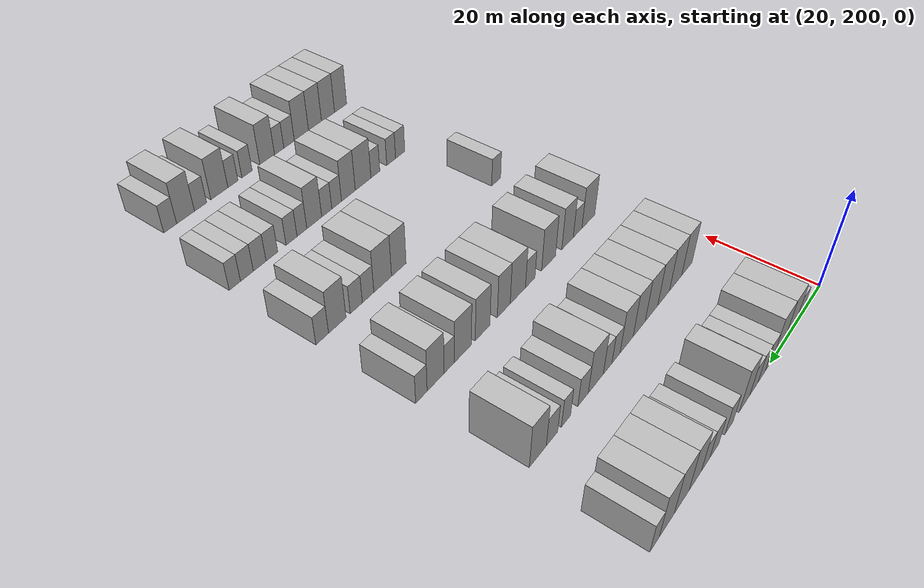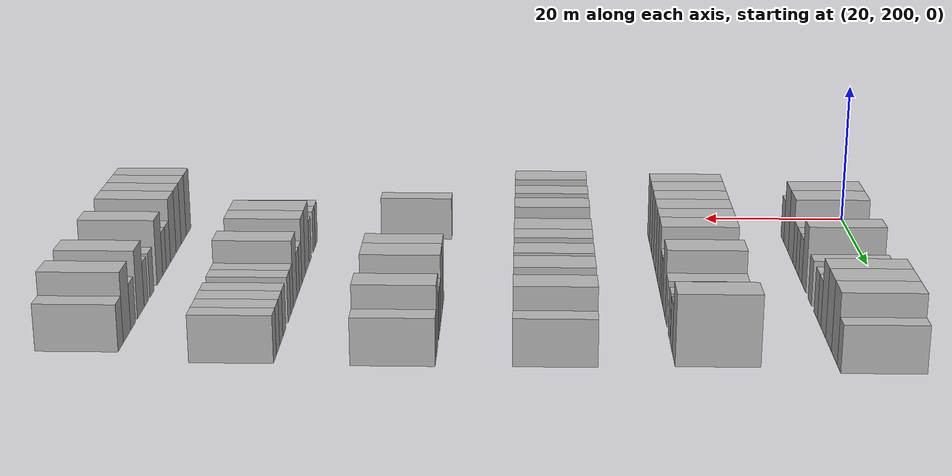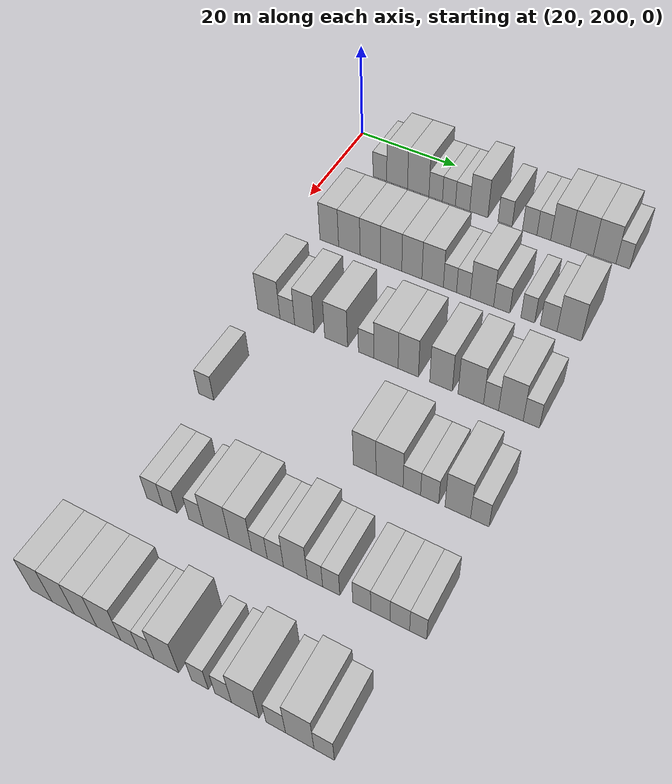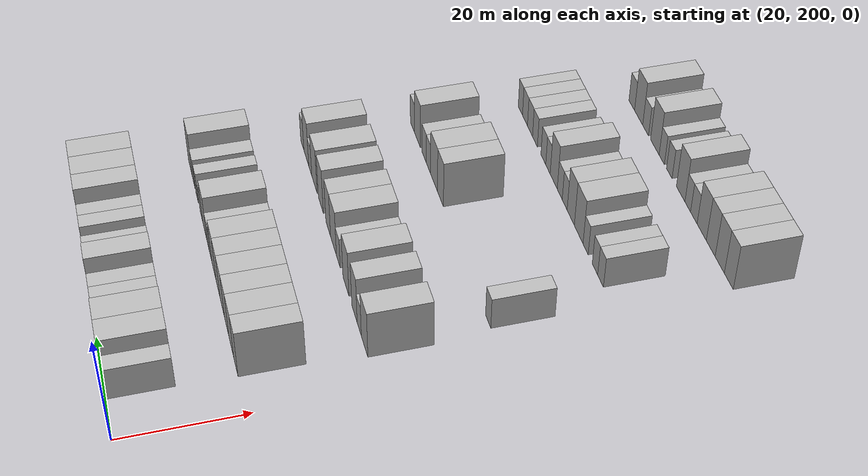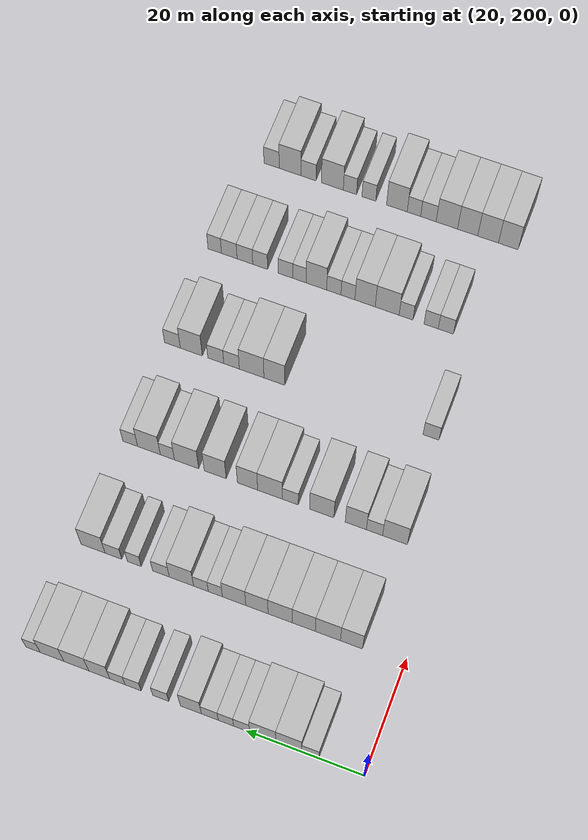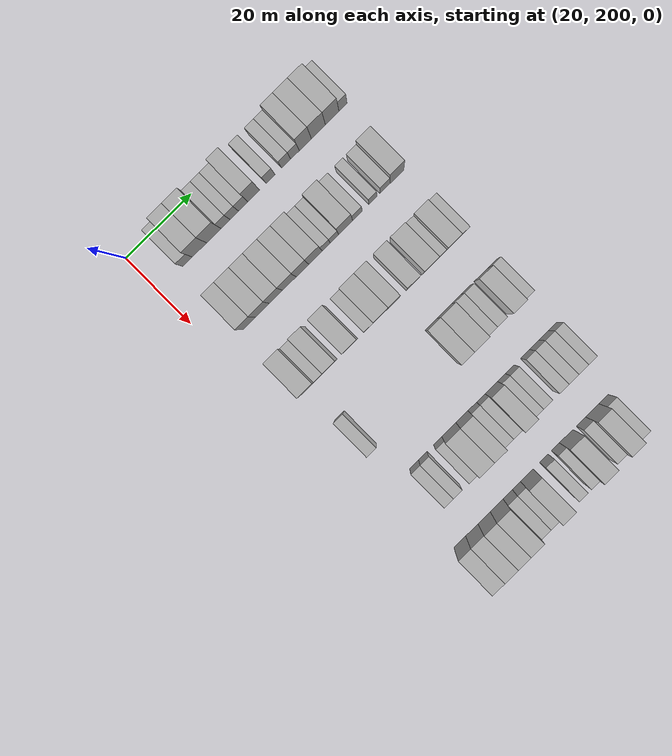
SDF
<sdf version="1.6">
 <world name="default">
  <model name="building_132">
   <static>1</static>
   <pose>25.0000 209.1109 0 0.000000 0.000000 0.000000</pose>
   <link name="link">
    <pose>0 0 3.00 0 0 0</pose>
    <collision name="collision"><geometry><box><size>10.0000 2.9074 6.0000</size></box></geometry></collision>
    <visual name="visual">
     <cast_shadows>0</cast_shadows>
     <geometry><box><size>10.0000 2.9074 6.0000</size></box></geometry>
     <material>
      <script>
       <uri>model://HANNAS_wall/materials/scripts</uri>
       <uri>model://HANNAS_wall/materials/textures</uri>
       <name>vrc/HANNAS_wall</name>
      </script>
     </material>
    </visual>
   </link>
  </model>
  <model name="building_133">
   <static>1</static>
   <pose>25.0000 212.7407 0 0.000000 0.000000 0.000000</pose>
   <link name="link">
    <pose>0 0 4.50 0 0 0</pose>
    <collision name="collision"><geometry><box><size>10.0000 4.3523 9.0000</size></box></geometry></collision>
    <visual name="visual">
     <cast_shadows>0</cast_shadows>
     <geometry><box><size>10.0000 4.3523 9.0000</size></box></geometry>
     <material>
      <script>
       <uri>model://HANNAS_wall/materials/scripts</uri>
       <uri>model://HANNAS_wall/materials/textures</uri>
       <name>vrc/HANNAS_wall</name>
      </script>
     </material>
    </visual>
   </link>
  </model>
  <model name="building_134">
   <static>1</static>
   <pose>25.0000 217.1286 0 0.000000 0.000000 0.000000</pose>
   <link name="link">
    <pose>0 0 4.50 0 0 0</pose>
    <collision name="collision"><geometry><box><size>10.0000 4.4235 9.0000</size></box></geometry></collision>
    <visual name="visual">
     <cast_shadows>0</cast_shadows>
     <geometry><box><size>10.0000 4.4235 9.0000</size></box></geometry>
     <material>
      <script>
       <uri>model://HANNAS_wall/materials/scripts</uri>
       <uri>model://HANNAS_wall/materials/textures</uri>
       <name>vrc/HANNAS_wall</name>
      </script>
     </material>
    </visual>
   </link>
  </model>
  <model name="building_135">
   <static>1</static>
   <pose>25.0000 220.7193 0 0.000000 0.000000 0.000000</pose>
   <link name="link">
    <pose>0 0 3.00 0 0 0</pose>
    <collision name="collision"><geometry><box><size>10.0000 2.7580 6.0000</size></box></geometry></collision>
    <visual name="visual">
     <cast_shadows>0</cast_shadows>
     <geometry><box><size>10.0000 2.7580 6.0000</size></box></geometry>
     <material>
      <script>
       <uri>model://HANNAS_wall/materials/scripts</uri>
       <uri>model://HANNAS_wall/materials/textures</uri>
       <name>vrc/HANNAS_wall</name>
      </script>
     </material>
    </visual>
   </link>
  </model>
  <model name="building_136">
   <static>1</static>
   <pose>25.0000 223.4106 0 0.000000 0.000000 0.000000</pose>
   <link name="link">
    <pose>0 0 3.00 0 0 0</pose>
    <collision name="collision"><geometry><box><size>10.0000 2.6246 6.0000</size></box></geometry></collision>
    <visual name="visual">
     <cast_shadows>0</cast_shadows>
     <geometry><box><size>10.0000 2.6246 6.0000</size></box></geometry>
     <material>
      <script>
       <uri>model://HANNAS_wall/materials/scripts</uri>
       <uri>model://HANNAS_wall/materials/textures</uri>
       <name>vrc/HANNAS_wall</name>
      </script>
     </material>
    </visual>
   </link>
  </model>
  <model name="building_137">
   <static>1</static>
   <pose>25.0000 226.1618 0 0.000000 0.000000 0.000000</pose>
   <link name="link">
    <pose>0 0 3.00 0 0 0</pose>
    <collision name="collision"><geometry><box><size>10.0000 2.8779 6.0000</size></box></geometry></collision>
    <visual name="visual">
     <cast_shadows>0</cast_shadows>
     <geometry><box><size>10.0000 2.8779 6.0000</size></box></geometry>
     <material>
      <script>
       <uri>model://HANNAS_wall/materials/scripts</uri>
       <uri>model://HANNAS_wall/materials/textures</uri>
       <name>vrc/HANNAS_wall</name>
      </script>
     </material>
    </visual>
   </link>
  </model>
  <model name="building_138">
   <static>1</static>
   <pose>25.0000 229.4009 0 0.000000 0.000000 0.000000</pose>
   <link name="link">
    <pose>0 0 4.50 0 0 0</pose>
    <collision name="collision"><geometry><box><size>10.0000 3.6002 9.0000</size></box></geometry></collision>
    <visual name="visual">
     <cast_shadows>0</cast_shadows>
     <geometry><box><size>10.0000 3.6002 9.0000</size></box></geometry>
     <material>
      <script>
       <uri>model://HANNAS_wall/materials/scripts</uri>
       <uri>model://HANNAS_wall/materials/textures</uri>
       <name>vrc/HANNAS_wall</name>
      </script>
     </material>
    </visual>
   </link>
  </model>
  <model name="building_139">
   <static>1</static>
   <pose>25.0000 234.5770 0 0.000000 0.000000 0.000000</pose>
   <link name="link">
    <pose>0 0 3.00 0 0 0</pose>
    <collision name="collision"><geometry><box><size>10.0000 2.7521 6.0000</size></box></geometry></collision>
    <visual name="visual">
     <cast_shadows>0</cast_shadows>
     <geometry><box><size>10.0000 2.7521 6.0000</size></box></geometry>
     <material>
      <script>
       <uri>model://HANNAS_wall/materials/scripts</uri>
       <uri>model://HANNAS_wall/materials/textures</uri>
       <name>vrc/HANNAS_wall</name>
      </script>
     </material>
    </visual>
   </link>
  </model>
  <model name="building_140">
   <static>1</static>
   <pose>25.0000 239.3436 0 0.000000 0.000000 0.000000</pose>
   <link name="link">
    <pose>0 0 3.00 0 0 0</pose>
    <collision name="collision"><geometry><box><size>10.0000 2.7811 6.0000</size></box></geometry></collision>
    <visual name="visual">
     <cast_shadows>0</cast_shadows>
     <geometry><box><size>10.0000 2.7811 6.0000</size></box></geometry>
     <material>
      <script>
       <uri>model://HANNAS_wall/materials/scripts</uri>
       <uri>model://HANNAS_wall/materials/textures</uri>
       <name>vrc/HANNAS_wall</name>
      </script>
     </material>
    </visual>
   </link>
  </model>
  <model name="building_141">
   <static>1</static>
   <pose>25.0000 242.0477 0 0.000000 0.000000 0.000000</pose>
   <link name="link">
    <pose>0 0 3.00 0 0 0</pose>
    <collision name="collision"><geometry><box><size>10.0000 2.6272 6.0000</size></box></geometry></collision>
    <visual name="visual">
     <cast_shadows>0</cast_shadows>
     <geometry><box><size>10.0000 2.6272 6.0000</size></box></geometry>
     <material>
      <script>
       <uri>model://HANNAS_wall/materials/scripts</uri>
       <uri>model://HANNAS_wall/materials/textures</uri>
       <name>vrc/HANNAS_wall</name>
      </script>
     </material>
    </visual>
   </link>
  </model>
  <model name="building_142">
   <static>1</static>
   <pose>25.0000 245.2012 0 0.000000 0.000000 0.000000</pose>
   <link name="link">
    <pose>0 0 4.50 0 0 0</pose>
    <collision name="collision"><geometry><box><size>10.0000 3.6797 9.0000</size></box></geometry></collision>
    <visual name="visual">
     <cast_shadows>0</cast_shadows>
     <geometry><box><size>10.0000 3.6797 9.0000</size></box></geometry>
     <material>
      <script>
       <uri>model://HANNAS_wall/materials/scripts</uri>
       <uri>model://HANNAS_wall/materials/textures</uri>
       <name>vrc/HANNAS_wall</name>
      </script>
     </material>
    </visual>
   </link>
  </model>
  <model name="building_143">
   <static>1</static>
   <pose>25.0000 249.1950 0 0.000000 0.000000 0.000000</pose>
   <link name="link">
    <pose>0 0 4.50 0 0 0</pose>
    <collision name="collision"><geometry><box><size>10.0000 4.3079 9.0000</size></box></geometry></collision>
    <visual name="visual">
     <cast_shadows>0</cast_shadows>
     <geometry><box><size>10.0000 4.3079 9.0000</size></box></geometry>
     <material>
      <script>
       <uri>model://HANNAS_wall/materials/scripts</uri>
       <uri>model://HANNAS_wall/materials/textures</uri>
       <name>vrc/HANNAS_wall</name>
      </script>
     </material>
    </visual>
   </link>
  </model>
  <model name="building_144">
   <static>1</static>
   <pose>25.0000 253.4299 0 0.000000 0.000000 0.000000</pose>
   <link name="link">
    <pose>0 0 4.50 0 0 0</pose>
    <collision name="collision"><geometry><box><size>10.0000 4.1620 9.0000</size></box></geometry></collision>
    <visual name="visual">
     <cast_shadows>0</cast_shadows>
     <geometry><box><size>10.0000 4.1620 9.0000</size></box></geometry>
     <material>
      <script>
       <uri>model://HANNAS_wall/materials/scripts</uri>
       <uri>model://HANNAS_wall/materials/textures</uri>
       <name>vrc/HANNAS_wall</name>
      </script>
     </material>
    </visual>
   </link>
  </model>
  <model name="building_145">
   <static>1</static>
   <pose>25.0000 256.7539 0 0.000000 0.000000 0.000000</pose>
   <link name="link">
    <pose>0 0 3.00 0 0 0</pose>
    <collision name="collision"><geometry><box><size>10.0000 2.4862 6.0000</size></box></geometry></collision>
    <visual name="visual">
     <cast_shadows>0</cast_shadows>
     <geometry><box><size>10.0000 2.4862 6.0000</size></box></geometry>
     <material>
      <script>
       <uri>model://HANNAS_wall/materials/scripts</uri>
       <uri>model://HANNAS_wall/materials/textures</uri>
       <name>vrc/HANNAS_wall</name>
      </script>
     </material>
    </visual>
   </link>
  </model>
  <model name="building_289">
   <static>1</static>
   <pose>44.0000 209.1658 0 0.000000 0.000000 0.000000</pose>
   <link name="link">
    <pose>0 0 4.50 0 0 0</pose>
    <collision name="collision"><geometry><box><size>10.0000 3.7976 9.0000</size></box></geometry></collision>
    <visual name="visual">
     <cast_shadows>0</cast_shadows>
     <geometry><box><size>10.0000 3.7976 9.0000</size></box></geometry>
     <material>
      <script>
       <uri>model://HANNAS_wall/materials/scripts</uri>
       <uri>model://HANNAS_wall/materials/textures</uri>
       <name>vrc/HANNAS_wall</name>
      </script>
     </material>
    </visual>
   </link>
  </model>
  <model name="building_290">
   <static>1</static>
   <pose>44.0000 213.2261 0 0.000000 0.000000 0.000000</pose>
   <link name="link">
    <pose>0 0 4.50 0 0 0</pose>
    <collision name="collision"><geometry><box><size>10.0000 4.3231 9.0000</size></box></geometry></collision>
    <visual name="visual">
     <cast_shadows>0</cast_shadows>
     <geometry><box><size>10.0000 4.3231 9.0000</size></box></geometry>
     <material>
      <script>
       <uri>model://HANNAS_wall/materials/scripts</uri>
       <uri>model://HANNAS_wall/materials/textures</uri>
       <name>vrc/HANNAS_wall</name>
      </script>
     </material>
    </visual>
   </link>
  </model>
  <model name="building_291">
   <static>1</static>
   <pose>44.0000 217.3887 0 0.000000 0.000000 0.000000</pose>
   <link name="link">
    <pose>0 0 4.50 0 0 0</pose>
    <collision name="collision"><geometry><box><size>10.0000 4.0022 9.0000</size></box></geometry></collision>
    <visual name="visual">
     <cast_shadows>0</cast_shadows>
     <geometry><box><size>10.0000 4.0022 9.0000</size></box></geometry>
     <material>
      <script>
       <uri>model://HANNAS_wall/materials/scripts</uri>
       <uri>model://HANNAS_wall/materials/textures</uri>
       <name>vrc/HANNAS_wall</name>
      </script>
     </material>
    </visual>
   </link>
  </model>
  <model name="building_292">
   <static>1</static>
   <pose>44.0000 221.4706 0 0.000000 0.000000 0.000000</pose>
   <link name="link">
    <pose>0 0 4.50 0 0 0</pose>
    <collision name="collision"><geometry><box><size>10.0000 4.1617 9.0000</size></box></geometry></collision>
    <visual name="visual">
     <cast_shadows>0</cast_shadows>
     <geometry><box><size>10.0000 4.1617 9.0000</size></box></geometry>
     <material>
      <script>
       <uri>model://HANNAS_wall/materials/scripts</uri>
       <uri>model://HANNAS_wall/materials/textures</uri>
       <name>vrc/HANNAS_wall</name>
      </script>
     </material>
    </visual>
   </link>
  </model>
  <model name="building_293">
   <static>1</static>
   <pose>44.0000 225.4884 0 0.000000 0.000000 0.000000</pose>
   <link name="link">
    <pose>0 0 4.50 0 0 0</pose>
    <collision name="collision"><geometry><box><size>10.0000 3.8737 9.0000</size></box></geometry></collision>
    <visual name="visual">
     <cast_shadows>0</cast_shadows>
     <geometry><box><size>10.0000 3.8737 9.0000</size></box></geometry>
     <material>
      <script>
       <uri>model://HANNAS_wall/materials/scripts</uri>
       <uri>model://HANNAS_wall/materials/textures</uri>
       <name>vrc/HANNAS_wall</name>
      </script>
     </material>
    </visual>
   </link>
  </model>
  <model name="building_294">
   <static>1</static>
   <pose>44.0000 229.4643 0 0.000000 0.000000 0.000000</pose>
   <link name="link">
    <pose>0 0 4.50 0 0 0</pose>
    <collision name="collision"><geometry><box><size>10.0000 4.0782 9.0000</size></box></geometry></collision>
    <visual name="visual">
     <cast_shadows>0</cast_shadows>
     <geometry><box><size>10.0000 4.0782 9.0000</size></box></geometry>
     <material>
      <script>
       <uri>model://HANNAS_wall/materials/scripts</uri>
       <uri>model://HANNAS_wall/materials/textures</uri>
       <name>vrc/HANNAS_wall</name>
      </script>
     </material>
    </visual>
   </link>
  </model>
  <model name="building_295">
   <static>1</static>
   <pose>44.0000 232.7392 0 0.000000 0.000000 0.000000</pose>
   <link name="link">
    <pose>0 0 3.00 0 0 0</pose>
    <collision name="collision"><geometry><box><size>10.0000 2.4716 6.0000</size></box></geometry></collision>
    <visual name="visual">
     <cast_shadows>0</cast_shadows>
     <geometry><box><size>10.0000 2.4716 6.0000</size></box></geometry>
     <material>
      <script>
       <uri>model://HANNAS_wall/materials/scripts</uri>
       <uri>model://HANNAS_wall/materials/textures</uri>
       <name>vrc/HANNAS_wall</name>
      </script>
     </material>
    </visual>
   </link>
  </model>
  <model name="building_296">
   <static>1</static>
   <pose>44.0000 235.2587 0 0.000000 0.000000 0.000000</pose>
   <link name="link">
    <pose>0 0 3.00 0 0 0</pose>
    <collision name="collision"><geometry><box><size>10.0000 2.5673 6.0000</size></box></geometry></collision>
    <visual name="visual">
     <cast_shadows>0</cast_shadows>
     <geometry><box><size>10.0000 2.5673 6.0000</size></box></geometry>
     <material>
      <script>
       <uri>model://HANNAS_wall/materials/scripts</uri>
       <uri>model://HANNAS_wall/materials/textures</uri>
       <name>vrc/HANNAS_wall</name>
      </script>
     </material>
    </visual>
   </link>
  </model>
  <model name="building_297">
   <static>1</static>
   <pose>44.0000 238.6880 0 0.000000 0.000000 0.000000</pose>
   <link name="link">
    <pose>0 0 4.50 0 0 0</pose>
    <collision name="collision"><geometry><box><size>10.0000 4.2914 9.0000</size></box></geometry></collision>
    <visual name="visual">
     <cast_shadows>0</cast_shadows>
     <geometry><box><size>10.0000 4.2914 9.0000</size></box></geometry>
     <material>
      <script>
       <uri>model://HANNAS_wall/materials/scripts</uri>
       <uri>model://HANNAS_wall/materials/textures</uri>
       <name>vrc/HANNAS_wall</name>
      </script>
     </material>
    </visual>
   </link>
  </model>
  <model name="building_298">
   <static>1</static>
   <pose>44.0000 242.3066 0 0.000000 0.000000 0.000000</pose>
   <link name="link">
    <pose>0 0 3.00 0 0 0</pose>
    <collision name="collision"><geometry><box><size>10.0000 2.9458 6.0000</size></box></geometry></collision>
    <visual name="visual">
     <cast_shadows>0</cast_shadows>
     <geometry><box><size>10.0000 2.9458 6.0000</size></box></geometry>
     <material>
      <script>
       <uri>model://HANNAS_wall/materials/scripts</uri>
       <uri>model://HANNAS_wall/materials/textures</uri>
       <name>vrc/HANNAS_wall</name>
      </script>
     </material>
    </visual>
   </link>
  </model>
  <model name="building_299">
   <static>1</static>
   <pose>44.0000 247.0071 0 0.000000 0.000000 0.000000</pose>
   <link name="link">
    <pose>0 0 3.00 0 0 0</pose>
    <collision name="collision"><geometry><box><size>10.0000 2.4551 6.0000</size></box></geometry></collision>
    <visual name="visual">
     <cast_shadows>0</cast_shadows>
     <geometry><box><size>10.0000 2.4551 6.0000</size></box></geometry>
     <material>
      <script>
       <uri>model://HANNAS_wall/materials/scripts</uri>
       <uri>model://HANNAS_wall/materials/textures</uri>
       <name>vrc/HANNAS_wall</name>
      </script>
     </material>
    </visual>
   </link>
  </model>
  <model name="building_300">
   <static>1</static>
   <pose>44.0000 250.7106 0 0.000000 0.000000 0.000000</pose>
   <link name="link">
    <pose>0 0 3.00 0 0 0</pose>
    <collision name="collision"><geometry><box><size>10.0000 2.9519 6.0000</size></box></geometry></collision>
    <visual name="visual">
     <cast_shadows>0</cast_shadows>
     <geometry><box><size>10.0000 2.9519 6.0000</size></box></geometry>
     <material>
      <script>
       <uri>model://HANNAS_wall/materials/scripts</uri>
       <uri>model://HANNAS_wall/materials/textures</uri>
       <name>vrc/HANNAS_wall</name>
      </script>
     </material>
    </visual>
   </link>
  </model>
  <model name="building_301">
   <static>1</static>
   <pose>44.0000 254.3223 0 0.000000 0.000000 0.000000</pose>
   <link name="link">
    <pose>0 0 4.50 0 0 0</pose>
    <collision name="collision"><geometry><box><size>10.0000 4.2716 9.0000</size></box></geometry></collision>
    <visual name="visual">
     <cast_shadows>0</cast_shadows>
     <geometry><box><size>10.0000 4.2716 9.0000</size></box></geometry>
     <material>
      <script>
       <uri>model://HANNAS_wall/materials/scripts</uri>
       <uri>model://HANNAS_wall/materials/textures</uri>
       <name>vrc/HANNAS_wall</name>
      </script>
     </material>
    </visual>
   </link>
  </model>
  <model name="building_466">
   <static>1</static>
   <pose>63.0000 208.5442 0 0.000000 0.000000 0.000000</pose>
   <link name="link">
    <pose>0 0 4.50 0 0 0</pose>
    <collision name="collision"><geometry><box><size>10.0000 4.3290 9.0000</size></box></geometry></collision>
    <visual name="visual">
     <cast_shadows>0</cast_shadows>
     <geometry><box><size>10.0000 4.3290 9.0000</size></box></geometry>
     <material>
      <script>
       <uri>model://HANNAS_wall/materials/scripts</uri>
       <uri>model://HANNAS_wall/materials/textures</uri>
       <name>vrc/HANNAS_wall</name>
      </script>
     </material>
    </visual>
   </link>
  </model>
  <model name="building_467">
   <static>1</static>
   <pose>63.0000 212.1310 0 0.000000 0.000000 0.000000</pose>
   <link name="link">
    <pose>0 0 3.00 0 0 0</pose>
    <collision name="collision"><geometry><box><size>10.0000 2.8446 6.0000</size></box></geometry></collision>
    <visual name="visual">
     <cast_shadows>0</cast_shadows>
     <geometry><box><size>10.0000 2.8446 6.0000</size></box></geometry>
     <material>
      <script>
       <uri>model://HANNAS_wall/materials/scripts</uri>
       <uri>model://HANNAS_wall/materials/textures</uri>
       <name>vrc/HANNAS_wall</name>
      </script>
     </material>
    </visual>
   </link>
  </model>
  <model name="building_468">
   <static>1</static>
   <pose>63.0000 215.4080 0 0.000000 0.000000 0.000000</pose>
   <link name="link">
    <pose>0 0 4.50 0 0 0</pose>
    <collision name="collision"><geometry><box><size>10.0000 3.7093 9.0000</size></box></geometry></collision>
    <visual name="visual">
     <cast_shadows>0</cast_shadows>
     <geometry><box><size>10.0000 3.7093 9.0000</size></box></geometry>
     <material>
      <script>
       <uri>model://HANNAS_wall/materials/scripts</uri>
       <uri>model://HANNAS_wall/materials/textures</uri>
       <name>vrc/HANNAS_wall</name>
      </script>
     </material>
    </visual>
   </link>
  </model>
  <model name="building_469">
   <static>1</static>
   <pose>63.0000 221.3991 0 0.000000 0.000000 0.000000</pose>
   <link name="link">
    <pose>0 0 4.50 0 0 0</pose>
    <collision name="collision"><geometry><box><size>10.0000 4.2730 9.0000</size></box></geometry></collision>
    <visual name="visual">
     <cast_shadows>0</cast_shadows>
     <geometry><box><size>10.0000 4.2730 9.0000</size></box></geometry>
     <material>
      <script>
       <uri>model://HANNAS_wall/materials/scripts</uri>
       <uri>model://HANNAS_wall/materials/textures</uri>
       <name>vrc/HANNAS_wall</name>
      </script>
     </material>
    </visual>
   </link>
  </model>
  <model name="building_470">
   <static>1</static>
   <pose>63.0000 226.9413 0 0.000000 0.000000 0.000000</pose>
   <link name="link">
    <pose>0 0 3.00 0 0 0</pose>
    <collision name="collision"><geometry><box><size>10.0000 2.8114 6.0000</size></box></geometry></collision>
    <visual name="visual">
     <cast_shadows>0</cast_shadows>
     <geometry><box><size>10.0000 2.8114 6.0000</size></box></geometry>
     <material>
      <script>
       <uri>model://HANNAS_wall/materials/scripts</uri>
       <uri>model://HANNAS_wall/materials/textures</uri>
       <name>vrc/HANNAS_wall</name>
      </script>
     </material>
    </visual>
   </link>
  </model>
  <model name="building_471">
   <static>1</static>
   <pose>63.0000 230.5444 0 0.000000 0.000000 0.000000</pose>
   <link name="link">
    <pose>0 0 4.50 0 0 0</pose>
    <collision name="collision"><geometry><box><size>10.0000 4.3949 9.0000</size></box></geometry></collision>
    <visual name="visual">
     <cast_shadows>0</cast_shadows>
     <geometry><box><size>10.0000 4.3949 9.0000</size></box></geometry>
     <material>
      <script>
       <uri>model://HANNAS_wall/materials/scripts</uri>
       <uri>model://HANNAS_wall/materials/textures</uri>
       <name>vrc/HANNAS_wall</name>
      </script>
     </material>
    </visual>
   </link>
  </model>
  <model name="building_472">
   <static>1</static>
   <pose>63.0000 234.5442 0 0.000000 0.000000 0.000000</pose>
   <link name="link">
    <pose>0 0 4.50 0 0 0</pose>
    <collision name="collision"><geometry><box><size>10.0000 3.6045 9.0000</size></box></geometry></collision>
    <visual name="visual">
     <cast_shadows>0</cast_shadows>
     <geometry><box><size>10.0000 3.6045 9.0000</size></box></geometry>
     <material>
      <script>
       <uri>model://HANNAS_wall/materials/scripts</uri>
       <uri>model://HANNAS_wall/materials/textures</uri>
       <name>vrc/HANNAS_wall</name>
      </script>
     </material>
    </visual>
   </link>
  </model>
  <model name="building_473">
   <static>1</static>
   <pose>63.0000 240.3106 0 0.000000 0.000000 0.000000</pose>
   <link name="link">
    <pose>0 0 4.50 0 0 0</pose>
    <collision name="collision"><geometry><box><size>10.0000 3.9284 9.0000</size></box></geometry></collision>
    <visual name="visual">
     <cast_shadows>0</cast_shadows>
     <geometry><box><size>10.0000 3.9284 9.0000</size></box></geometry>
     <material>
      <script>
       <uri>model://HANNAS_wall/materials/scripts</uri>
       <uri>model://HANNAS_wall/materials/textures</uri>
       <name>vrc/HANNAS_wall</name>
      </script>
     </material>
    </visual>
   </link>
  </model>
  <model name="building_474">
   <static>1</static>
   <pose>63.0000 245.4565 0 0.000000 0.000000 0.000000</pose>
   <link name="link">
    <pose>0 0 4.50 0 0 0</pose>
    <collision name="collision"><geometry><box><size>10.0000 4.3634 9.0000</size></box></geometry></collision>
    <visual name="visual">
     <cast_shadows>0</cast_shadows>
     <geometry><box><size>10.0000 4.3634 9.0000</size></box></geometry>
     <material>
      <script>
       <uri>model://HANNAS_wall/materials/scripts</uri>
       <uri>model://HANNAS_wall/materials/textures</uri>
       <name>vrc/HANNAS_wall</name>
      </script>
     </material>
    </visual>
   </link>
  </model>
  <model name="building_475">
   <static>1</static>
   <pose>63.0000 248.9073 0 0.000000 0.000000 0.000000</pose>
   <link name="link">
    <pose>0 0 3.00 0 0 0</pose>
    <collision name="collision"><geometry><box><size>10.0000 2.5383 6.0000</size></box></geometry></collision>
    <visual name="visual">
     <cast_shadows>0</cast_shadows>
     <geometry><box><size>10.0000 2.5383 6.0000</size></box></geometry>
     <material>
      <script>
       <uri>model://HANNAS_wall/materials/scripts</uri>
       <uri>model://HANNAS_wall/materials/textures</uri>
       <name>vrc/HANNAS_wall</name>
      </script>
     </material>
    </visual>
   </link>
  </model>
  <model name="building_476">
   <static>1</static>
   <pose>63.0000 252.2287 0 0.000000 0.000000 0.000000</pose>
   <link name="link">
    <pose>0 0 4.50 0 0 0</pose>
    <collision name="collision"><geometry><box><size>10.0000 4.1044 9.0000</size></box></geometry></collision>
    <visual name="visual">
     <cast_shadows>0</cast_shadows>
     <geometry><box><size>10.0000 4.1044 9.0000</size></box></geometry>
     <material>
      <script>
       <uri>model://HANNAS_wall/materials/scripts</uri>
       <uri>model://HANNAS_wall/materials/textures</uri>
       <name>vrc/HANNAS_wall</name>
      </script>
     </material>
    </visual>
   </link>
  </model>
  <model name="building_477">
   <static>1</static>
   <pose>63.0000 255.6256 0 0.000000 0.000000 0.000000</pose>
   <link name="link">
    <pose>0 0 3.00 0 0 0</pose>
    <collision name="collision"><geometry><box><size>10.0000 2.6895 6.0000</size></box></geometry></collision>
    <visual name="visual">
     <cast_shadows>0</cast_shadows>
     <geometry><box><size>10.0000 2.6895 6.0000</size></box></geometry>
     <material>
      <script>
       <uri>model://HANNAS_wall/materials/scripts</uri>
       <uri>model://HANNAS_wall/materials/textures</uri>
       <name>vrc/HANNAS_wall</name>
      </script>
     </material>
    </visual>
   </link>
  </model>
  <model name="building_634">
   <static>1</static>
   <pose>82.0000 208.9609 0 0.000000 0.000000 0.000000</pose>
   <link name="link">
    <pose>0 0 3.00 0 0 0</pose>
    <collision name="collision"><geometry><box><size>10.0000 2.8311 6.0000</size></box></geometry></collision>
    <visual name="visual">
     <cast_shadows>0</cast_shadows>
     <geometry><box><size>10.0000 2.8311 6.0000</size></box></geometry>
     <material>
      <script>
       <uri>model://HANNAS_wall/materials/scripts</uri>
       <uri>model://HANNAS_wall/materials/textures</uri>
       <name>vrc/HANNAS_wall</name>
      </script>
     </material>
    </visual>
   </link>
  </model>
  <model name="building_635">
   <static>1</static>
   <pose>82.0000 237.0724 0 0.000000 0.000000 0.000000</pose>
   <link name="link">
    <pose>0 0 4.50 0 0 0</pose>
    <collision name="collision"><geometry><box><size>10.0000 3.7973 9.0000</size></box></geometry></collision>
    <visual name="visual">
     <cast_shadows>0</cast_shadows>
     <geometry><box><size>10.0000 3.7973 9.0000</size></box></geometry>
     <material>
      <script>
       <uri>model://HANNAS_wall/materials/scripts</uri>
       <uri>model://HANNAS_wall/materials/textures</uri>
       <name>vrc/HANNAS_wall</name>
      </script>
     </material>
    </visual>
   </link>
  </model>
  <model name="building_636">
   <static>1</static>
   <pose>82.0000 241.2092 0 0.000000 0.000000 0.000000</pose>
   <link name="link">
    <pose>0 0 4.50 0 0 0</pose>
    <collision name="collision"><geometry><box><size>10.0000 4.4763 9.0000</size></box></geometry></collision>
    <visual name="visual">
     <cast_shadows>0</cast_shadows>
     <geometry><box><size>10.0000 4.4763 9.0000</size></box></geometry>
     <material>
      <script>
       <uri>model://HANNAS_wall/materials/scripts</uri>
       <uri>model://HANNAS_wall/materials/textures</uri>
       <name>vrc/HANNAS_wall</name>
      </script>
     </material>
    </visual>
   </link>
  </model>
  <model name="building_637">
   <static>1</static>
   <pose>82.0000 244.8685 0 0.000000 0.000000 0.000000</pose>
   <link name="link">
    <pose>0 0 3.00 0 0 0</pose>
    <collision name="collision"><geometry><box><size>10.0000 2.8423 6.0000</size></box></geometry></collision>
    <visual name="visual">
     <cast_shadows>0</cast_shadows>
     <geometry><box><size>10.0000 2.8423 6.0000</size></box></geometry>
     <material>
      <script>
       <uri>model://HANNAS_wall/materials/scripts</uri>
       <uri>model://HANNAS_wall/materials/textures</uri>
       <name>vrc/HANNAS_wall</name>
      </script>
     </material>
    </visual>
   </link>
  </model>
  <model name="building_638">
   <static>1</static>
   <pose>82.0000 247.7495 0 0.000000 0.000000 0.000000</pose>
   <link name="link">
    <pose>0 0 3.00 0 0 0</pose>
    <collision name="collision"><geometry><box><size>10.0000 2.9196 6.0000</size></box></geometry></collision>
    <visual name="visual">
     <cast_shadows>0</cast_shadows>
     <geometry><box><size>10.0000 2.9196 6.0000</size></box></geometry>
     <material>
      <script>
       <uri>model://HANNAS_wall/materials/scripts</uri>
       <uri>model://HANNAS_wall/materials/textures</uri>
       <name>vrc/HANNAS_wall</name>
      </script>
     </material>
    </visual>
   </link>
  </model>
  <model name="building_639">
   <static>1</static>
   <pose>82.0000 252.2357 0 0.000000 0.000000 0.000000</pose>
   <link name="link">
    <pose>0 0 4.50 0 0 0</pose>
    <collision name="collision"><geometry><box><size>10.0000 4.0528 9.0000</size></box></geometry></collision>
    <visual name="visual">
     <cast_shadows>0</cast_shadows>
     <geometry><box><size>10.0000 4.0528 9.0000</size></box></geometry>
     <material>
      <script>
       <uri>model://HANNAS_wall/materials/scripts</uri>
       <uri>model://HANNAS_wall/materials/textures</uri>
       <name>vrc/HANNAS_wall</name>
      </script>
     </material>
    </visual>
   </link>
  </model>
  <model name="building_640">
   <static>1</static>
   <pose>82.0000 255.7066 0 0.000000 0.000000 0.000000</pose>
   <link name="link">
    <pose>0 0 3.00 0 0 0</pose>
    <collision name="collision"><geometry><box><size>10.0000 2.8890 6.0000</size></box></geometry></collision>
    <visual name="visual">
     <cast_shadows>0</cast_shadows>
     <geometry><box><size>10.0000 2.8890 6.0000</size></box></geometry>
     <material>
      <script>
       <uri>model://HANNAS_wall/materials/scripts</uri>
       <uri>model://HANNAS_wall/materials/textures</uri>
       <name>vrc/HANNAS_wall</name>
      </script>
     </material>
    </visual>
   </link>
  </model>
  <model name="building_806">
   <static>1</static>
   <pose>101.0000 212.9687 0 0.000000 0.000000 0.000000</pose>
   <link name="link">
    <pose>0 0 3.00 0 0 0</pose>
    <collision name="collision"><geometry><box><size>10.0000 2.7431 6.0000</size></box></geometry></collision>
    <visual name="visual">
     <cast_shadows>0</cast_shadows>
     <geometry><box><size>10.0000 2.7431 6.0000</size></box></geometry>
     <material>
      <script>
       <uri>model://HANNAS_wall/materials/scripts</uri>
       <uri>model://HANNAS_wall/materials/textures</uri>
       <name>vrc/HANNAS_wall</name>
      </script>
     </material>
    </visual>
   </link>
  </model>
  <model name="building_807">
   <static>1</static>
   <pose>101.0000 215.6343 0 0.000000 0.000000 0.000000</pose>
   <link name="link">
    <pose>0 0 3.00 0 0 0</pose>
    <collision name="collision"><geometry><box><size>10.0000 2.5882 6.0000</size></box></geometry></collision>
    <visual name="visual">
     <cast_shadows>0</cast_shadows>
     <geometry><box><size>10.0000 2.5882 6.0000</size></box></geometry>
     <material>
      <script>
       <uri>model://HANNAS_wall/materials/scripts</uri>
       <uri>model://HANNAS_wall/materials/textures</uri>
       <name>vrc/HANNAS_wall</name>
      </script>
     </material>
    </visual>
   </link>
  </model>
  <model name="building_808">
   <static>1</static>
   <pose>101.0000 220.1903 0 0.000000 0.000000 0.000000</pose>
   <link name="link">
    <pose>0 0 3.00 0 0 0</pose>
    <collision name="collision"><geometry><box><size>10.0000 2.5238 6.0000</size></box></geometry></collision>
    <visual name="visual">
     <cast_shadows>0</cast_shadows>
     <geometry><box><size>10.0000 2.5238 6.0000</size></box></geometry>
     <material>
      <script>
       <uri>model://HANNAS_wall/materials/scripts</uri>
       <uri>model://HANNAS_wall/materials/textures</uri>
       <name>vrc/HANNAS_wall</name>
      </script>
     </material>
    </visual>
   </link>
  </model>
  <model name="building_809">
   <static>1</static>
   <pose>101.0000 223.6380 0 0.000000 0.000000 0.000000</pose>
   <link name="link">
    <pose>0 0 4.50 0 0 0</pose>
    <collision name="collision"><geometry><box><size>10.0000 4.3714 9.0000</size></box></geometry></collision>
    <visual name="visual">
     <cast_shadows>0</cast_shadows>
     <geometry><box><size>10.0000 4.3714 9.0000</size></box></geometry>
     <material>
      <script>
       <uri>model://HANNAS_wall/materials/scripts</uri>
       <uri>model://HANNAS_wall/materials/textures</uri>
       <name>vrc/HANNAS_wall</name>
      </script>
     </material>
    </visual>
   </link>
  </model>
  <model name="building_810">
   <static>1</static>
   <pose>101.0000 227.6789 0 0.000000 0.000000 0.000000</pose>
   <link name="link">
    <pose>0 0 4.50 0 0 0</pose>
    <collision name="collision"><geometry><box><size>10.0000 3.7105 9.0000</size></box></geometry></collision>
    <visual name="visual">
     <cast_shadows>0</cast_shadows>
     <geometry><box><size>10.0000 3.7105 9.0000</size></box></geometry>
     <material>
      <script>
       <uri>model://HANNAS_wall/materials/scripts</uri>
       <uri>model://HANNAS_wall/materials/textures</uri>
       <name>vrc/HANNAS_wall</name>
      </script>
     </material>
    </visual>
   </link>
  </model>
  <model name="building_811">
   <static>1</static>
   <pose>101.0000 230.8157 0 0.000000 0.000000 0.000000</pose>
   <link name="link">
    <pose>0 0 3.00 0 0 0</pose>
    <collision name="collision"><geometry><box><size>10.0000 2.5631 6.0000</size></box></geometry></collision>
    <visual name="visual">
     <cast_shadows>0</cast_shadows>
     <geometry><box><size>10.0000 2.5631 6.0000</size></box></geometry>
     <material>
      <script>
       <uri>model://HANNAS_wall/materials/scripts</uri>
       <uri>model://HANNAS_wall/materials/textures</uri>
       <name>vrc/HANNAS_wall</name>
      </script>
     </material>
    </visual>
   </link>
  </model>
  <model name="building_812">
   <static>1</static>
   <pose>101.0000 233.4130 0 0.000000 0.000000 0.000000</pose>
   <link name="link">
    <pose>0 0 3.00 0 0 0</pose>
    <collision name="collision"><geometry><box><size>10.0000 2.6315 6.0000</size></box></geometry></collision>
    <visual name="visual">
     <cast_shadows>0</cast_shadows>
     <geometry><box><size>10.0000 2.6315 6.0000</size></box></geometry>
     <material>
      <script>
       <uri>model://HANNAS_wall/materials/scripts</uri>
       <uri>model://HANNAS_wall/materials/textures</uri>
       <name>vrc/HANNAS_wall</name>
      </script>
     </material>
    </visual>
   </link>
  </model>
  <model name="building_813">
   <static>1</static>
   <pose>101.0000 236.6324 0 0.000000 0.000000 0.000000</pose>
   <link name="link">
    <pose>0 0 4.50 0 0 0</pose>
    <collision name="collision"><geometry><box><size>10.0000 3.8075 9.0000</size></box></geometry></collision>
    <visual name="visual">
     <cast_shadows>0</cast_shadows>
     <geometry><box><size>10.0000 3.8075 9.0000</size></box></geometry>
     <material>
      <script>
       <uri>model://HANNAS_wall/materials/scripts</uri>
       <uri>model://HANNAS_wall/materials/textures</uri>
       <name>vrc/HANNAS_wall</name>
      </script>
     </material>
    </visual>
   </link>
  </model>
  <model name="building_814">
   <static>1</static>
   <pose>101.0000 239.7515 0 0.000000 0.000000 0.000000</pose>
   <link name="link">
    <pose>0 0 3.00 0 0 0</pose>
    <collision name="collision"><geometry><box><size>10.0000 2.4307 6.0000</size></box></geometry></collision>
    <visual name="visual">
     <cast_shadows>0</cast_shadows>
     <geometry><box><size>10.0000 2.4307 6.0000</size></box></geometry>
     <material>
      <script>
       <uri>model://HANNAS_wall/materials/scripts</uri>
       <uri>model://HANNAS_wall/materials/textures</uri>
       <name>vrc/HANNAS_wall</name>
      </script>
     </material>
    </visual>
   </link>
  </model>
  <model name="building_815">
   <static>1</static>
   <pose>101.0000 242.3057 0 0.000000 0.000000 0.000000</pose>
   <link name="link">
    <pose>0 0 3.00 0 0 0</pose>
    <collision name="collision"><geometry><box><size>10.0000 2.6776 6.0000</size></box></geometry></collision>
    <visual name="visual">
     <cast_shadows>0</cast_shadows>
     <geometry><box><size>10.0000 2.6776 6.0000</size></box></geometry>
     <material>
      <script>
       <uri>model://HANNAS_wall/materials/scripts</uri>
       <uri>model://HANNAS_wall/materials/textures</uri>
       <name>vrc/HANNAS_wall</name>
      </script>
     </material>
    </visual>
   </link>
  </model>
  <model name="building_816">
   <static>1</static>
   <pose>101.0000 247.0216 0 0.000000 0.000000 0.000000</pose>
   <link name="link">
    <pose>0 0 3.00 0 0 0</pose>
    <collision name="collision"><geometry><box><size>10.0000 2.7542 6.0000</size></box></geometry></collision>
    <visual name="visual">
     <cast_shadows>0</cast_shadows>
     <geometry><box><size>10.0000 2.7542 6.0000</size></box></geometry>
     <material>
      <script>
       <uri>model://HANNAS_wall/materials/scripts</uri>
       <uri>model://HANNAS_wall/materials/textures</uri>
       <name>vrc/HANNAS_wall</name>
      </script>
     </material>
    </visual>
   </link>
  </model>
  <model name="building_817">
   <static>1</static>
   <pose>101.0000 249.8648 0 0.000000 0.000000 0.000000</pose>
   <link name="link">
    <pose>0 0 3.00 0 0 0</pose>
    <collision name="collision"><geometry><box><size>10.0000 2.9322 6.0000</size></box></geometry></collision>
    <visual name="visual">
     <cast_shadows>0</cast_shadows>
     <geometry><box><size>10.0000 2.9322 6.0000</size></box></geometry>
     <material>
      <script>
       <uri>model://HANNAS_wall/materials/scripts</uri>
       <uri>model://HANNAS_wall/materials/textures</uri>
       <name>vrc/HANNAS_wall</name>
      </script>
     </material>
    </visual>
   </link>
  </model>
  <model name="building_818">
   <static>1</static>
   <pose>101.0000 252.7821 0 0.000000 0.000000 0.000000</pose>
   <link name="link">
    <pose>0 0 3.00 0 0 0</pose>
    <collision name="collision"><geometry><box><size>10.0000 2.9024 6.0000</size></box></geometry></collision>
    <visual name="visual">
     <cast_shadows>0</cast_shadows>
     <geometry><box><size>10.0000 2.9024 6.0000</size></box></geometry>
     <material>
      <script>
       <uri>model://HANNAS_wall/materials/scripts</uri>
       <uri>model://HANNAS_wall/materials/textures</uri>
       <name>vrc/HANNAS_wall</name>
      </script>
     </material>
    </visual>
   </link>
  </model>
  <model name="building_819">
   <static>1</static>
   <pose>101.0000 255.4877 0 0.000000 0.000000 0.000000</pose>
   <link name="link">
    <pose>0 0 3.00 0 0 0</pose>
    <collision name="collision"><geometry><box><size>10.0000 2.5089 6.0000</size></box></geometry></collision>
    <visual name="visual">
     <cast_shadows>0</cast_shadows>
     <geometry><box><size>10.0000 2.5089 6.0000</size></box></geometry>
     <material>
      <script>
       <uri>model://HANNAS_wall/materials/scripts</uri>
       <uri>model://HANNAS_wall/materials/textures</uri>
       <name>vrc/HANNAS_wall</name>
      </script>
     </material>
    </visual>
   </link>
  </model>
  <model name="building_977">
   <static>1</static>
   <pose>120.0000 208.0988 0 0.000000 0.000000 0.000000</pose>
   <link name="link">
    <pose>0 0 4.50 0 0 0</pose>
    <collision name="collision"><geometry><box><size>10.0000 3.6094 9.0000</size></box></geometry></collision>
    <visual name="visual">
     <cast_shadows>0</cast_shadows>
     <geometry><box><size>10.0000 3.6094 9.0000</size></box></geometry>
     <material>
      <script>
       <uri>model://HANNAS_wall/materials/scripts</uri>
       <uri>model://HANNAS_wall/materials/textures</uri>
       <name>vrc/HANNAS_wall</name>
      </script>
     </material>
    </visual>
   </link>
  </model>
  <model name="building_978">
   <static>1</static>
   <pose>120.0000 211.8090 0 0.000000 0.000000 0.000000</pose>
   <link name="link">
    <pose>0 0 4.50 0 0 0</pose>
    <collision name="collision"><geometry><box><size>10.0000 3.8110 9.0000</size></box></geometry></collision>
    <visual name="visual">
     <cast_shadows>0</cast_shadows>
     <geometry><box><size>10.0000 3.8110 9.0000</size></box></geometry>
     <material>
      <script>
       <uri>model://HANNAS_wall/materials/scripts</uri>
       <uri>model://HANNAS_wall/materials/textures</uri>
       <name>vrc/HANNAS_wall</name>
      </script>
     </material>
    </visual>
   </link>
  </model>
  <model name="building_979">
   <static>1</static>
   <pose>120.0000 215.5717 0 0.000000 0.000000 0.000000</pose>
   <link name="link">
    <pose>0 0 4.50 0 0 0</pose>
    <collision name="collision"><geometry><box><size>10.0000 3.7146 9.0000</size></box></geometry></collision>
    <visual name="visual">
     <cast_shadows>0</cast_shadows>
     <geometry><box><size>10.0000 3.7146 9.0000</size></box></geometry>
     <material>
      <script>
       <uri>model://HANNAS_wall/materials/scripts</uri>
       <uri>model://HANNAS_wall/materials/textures</uri>
       <name>vrc/HANNAS_wall</name>
      </script>
     </material>
    </visual>
   </link>
  </model>
  <model name="building_980">
   <static>1</static>
   <pose>120.0000 219.4147 0 0.000000 0.000000 0.000000</pose>
   <link name="link">
    <pose>0 0 4.50 0 0 0</pose>
    <collision name="collision"><geometry><box><size>10.0000 3.9715 9.0000</size></box></geometry></collision>
    <visual name="visual">
     <cast_shadows>0</cast_shadows>
     <geometry><box><size>10.0000 3.9715 9.0000</size></box></geometry>
     <material>
      <script>
       <uri>model://HANNAS_wall/materials/scripts</uri>
       <uri>model://HANNAS_wall/materials/textures</uri>
       <name>vrc/HANNAS_wall</name>
      </script>
     </material>
    </visual>
   </link>
  </model>
  <model name="building_981">
   <static>1</static>
   <pose>120.0000 222.8329 0 0.000000 0.000000 0.000000</pose>
   <link name="link">
    <pose>0 0 3.00 0 0 0</pose>
    <collision name="collision"><geometry><box><size>10.0000 2.8649 6.0000</size></box></geometry></collision>
    <visual name="visual">
     <cast_shadows>0</cast_shadows>
     <geometry><box><size>10.0000 2.8649 6.0000</size></box></geometry>
     <material>
      <script>
       <uri>model://HANNAS_wall/materials/scripts</uri>
       <uri>model://HANNAS_wall/materials/textures</uri>
       <name>vrc/HANNAS_wall</name>
      </script>
     </material>
    </visual>
   </link>
  </model>
  <model name="building_982">
   <static>1</static>
   <pose>120.0000 225.5158 0 0.000000 0.000000 0.000000</pose>
   <link name="link">
    <pose>0 0 3.00 0 0 0</pose>
    <collision name="collision"><geometry><box><size>10.0000 2.5008 6.0000</size></box></geometry></collision>
    <visual name="visual">
     <cast_shadows>0</cast_shadows>
     <geometry><box><size>10.0000 2.5008 6.0000</size></box></geometry>
     <material>
      <script>
       <uri>model://HANNAS_wall/materials/scripts</uri>
       <uri>model://HANNAS_wall/materials/textures</uri>
       <name>vrc/HANNAS_wall</name>
      </script>
     </material>
    </visual>
   </link>
  </model>
  <model name="building_983">
   <static>1</static>
   <pose>120.0000 228.6901 0 0.000000 0.000000 0.000000</pose>
   <link name="link">
    <pose>0 0 4.50 0 0 0</pose>
    <collision name="collision"><geometry><box><size>10.0000 3.8479 9.0000</size></box></geometry></collision>
    <visual name="visual">
     <cast_shadows>0</cast_shadows>
     <geometry><box><size>10.0000 3.8479 9.0000</size></box></geometry>
     <material>
      <script>
       <uri>model://HANNAS_wall/materials/scripts</uri>
       <uri>model://HANNAS_wall/materials/textures</uri>
       <name>vrc/HANNAS_wall</name>
      </script>
     </material>
    </visual>
   </link>
  </model>
  <model name="building_984">
   <static>1</static>
   <pose>120.0000 233.9117 0 0.000000 0.000000 0.000000</pose>
   <link name="link">
    <pose>0 0 3.00 0 0 0</pose>
    <collision name="collision"><geometry><box><size>10.0000 2.5953 6.0000</size></box></geometry></collision>
    <visual name="visual">
     <cast_shadows>0</cast_shadows>
     <geometry><box><size>10.0000 2.5953 6.0000</size></box></geometry>
     <material>
      <script>
       <uri>model://HANNAS_wall/materials/scripts</uri>
       <uri>model://HANNAS_wall/materials/textures</uri>
       <name>vrc/HANNAS_wall</name>
      </script>
     </material>
    </visual>
   </link>
  </model>
  <model name="building_985">
   <static>1</static>
   <pose>120.0000 237.4539 0 0.000000 0.000000 0.000000</pose>
   <link name="link">
    <pose>0 0 3.00 0 0 0</pose>
    <collision name="collision"><geometry><box><size>10.0000 2.4892 6.0000</size></box></geometry></collision>
    <visual name="visual">
     <cast_shadows>0</cast_shadows>
     <geometry><box><size>10.0000 2.4892 6.0000</size></box></geometry>
     <material>
      <script>
       <uri>model://HANNAS_wall/materials/scripts</uri>
       <uri>model://HANNAS_wall/materials/textures</uri>
       <name>vrc/HANNAS_wall</name>
      </script>
     </material>
    </visual>
   </link>
  </model>
  <model name="building_986">
   <static>1</static>
   <pose>120.0000 240.7684 0 0.000000 0.000000 0.000000</pose>
   <link name="link">
    <pose>0 0 4.50 0 0 0</pose>
    <collision name="collision"><geometry><box><size>10.0000 4.1398 9.0000</size></box></geometry></collision>
    <visual name="visual">
     <cast_shadows>0</cast_shadows>
     <geometry><box><size>10.0000 4.1398 9.0000</size></box></geometry>
     <material>
      <script>
       <uri>model://HANNAS_wall/materials/scripts</uri>
       <uri>model://HANNAS_wall/materials/textures</uri>
       <name>vrc/HANNAS_wall</name>
      </script>
     </material>
    </visual>
   </link>
  </model>
  <model name="building_987">
   <static>1</static>
   <pose>120.0000 245.2661 0 0.000000 0.000000 0.000000</pose>
   <link name="link">
    <pose>0 0 3.00 0 0 0</pose>
    <collision name="collision"><geometry><box><size>10.0000 2.8557 6.0000</size></box></geometry></collision>
    <visual name="visual">
     <cast_shadows>0</cast_shadows>
     <geometry><box><size>10.0000 2.8557 6.0000</size></box></geometry>
     <material>
      <script>
       <uri>model://HANNAS_wall/materials/scripts</uri>
       <uri>model://HANNAS_wall/materials/textures</uri>
       <name>vrc/HANNAS_wall</name>
      </script>
     </material>
    </visual>
   </link>
  </model>
  <model name="building_988">
   <static>1</static>
   <pose>120.0000 248.7363 0 0.000000 0.000000 0.000000</pose>
   <link name="link">
    <pose>0 0 4.50 0 0 0</pose>
    <collision name="collision"><geometry><box><size>10.0000 4.0848 9.0000</size></box></geometry></collision>
    <visual name="visual">
     <cast_shadows>0</cast_shadows>
     <geometry><box><size>10.0000 4.0848 9.0000</size></box></geometry>
     <material>
      <script>
       <uri>model://HANNAS_wall/materials/scripts</uri>
       <uri>model://HANNAS_wall/materials/textures</uri>
       <name>vrc/HANNAS_wall</name>
      </script>
     </material>
    </visual>
   </link>
  </model>
  <model name="building_989">
   <static>1</static>
   <pose>120.0000 252.2207 0 0.000000 0.000000 0.000000</pose>
   <link name="link">
    <pose>0 0 3.00 0 0 0</pose>
    <collision name="collision"><geometry><box><size>10.0000 2.8840 6.0000</size></box></geometry></collision>
    <visual name="visual">
     <cast_shadows>0</cast_shadows>
     <geometry><box><size>10.0000 2.8840 6.0000</size></box></geometry>
     <material>
      <script>
       <uri>model://HANNAS_wall/materials/scripts</uri>
       <uri>model://HANNAS_wall/materials/textures</uri>
       <name>vrc/HANNAS_wall</name>
      </script>
     </material>
    </visual>
   </link>
  </model>
 </world>
</sdf>
